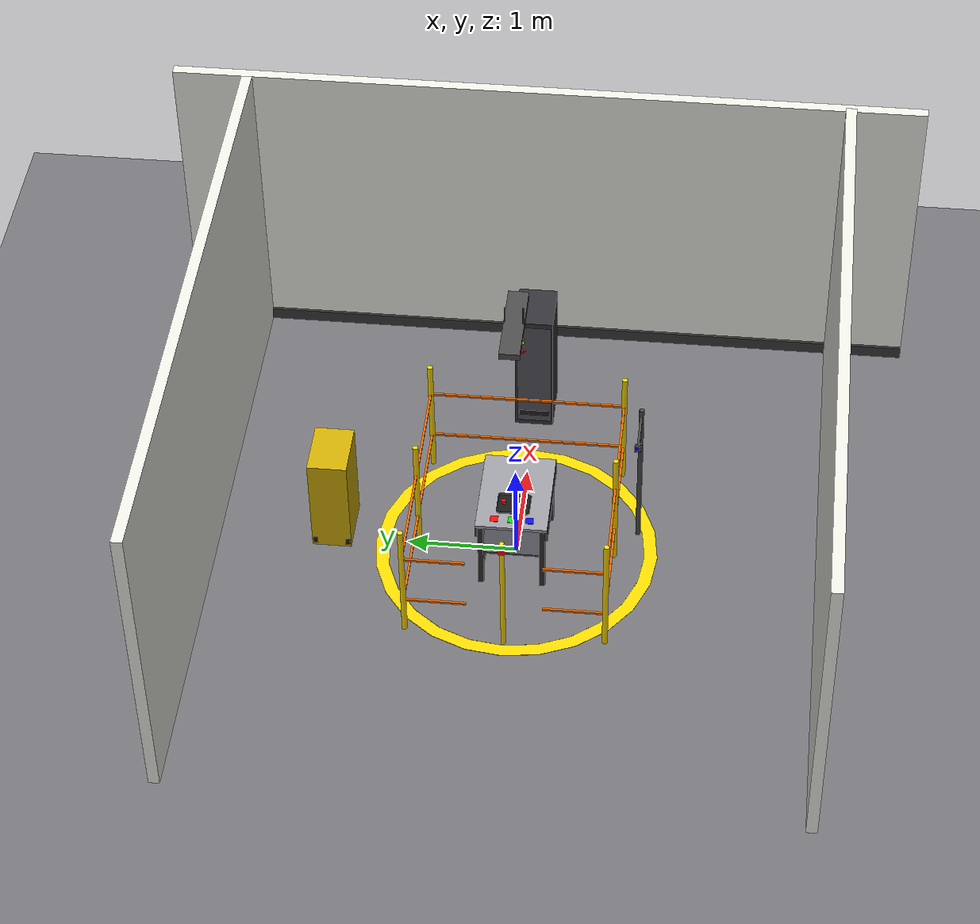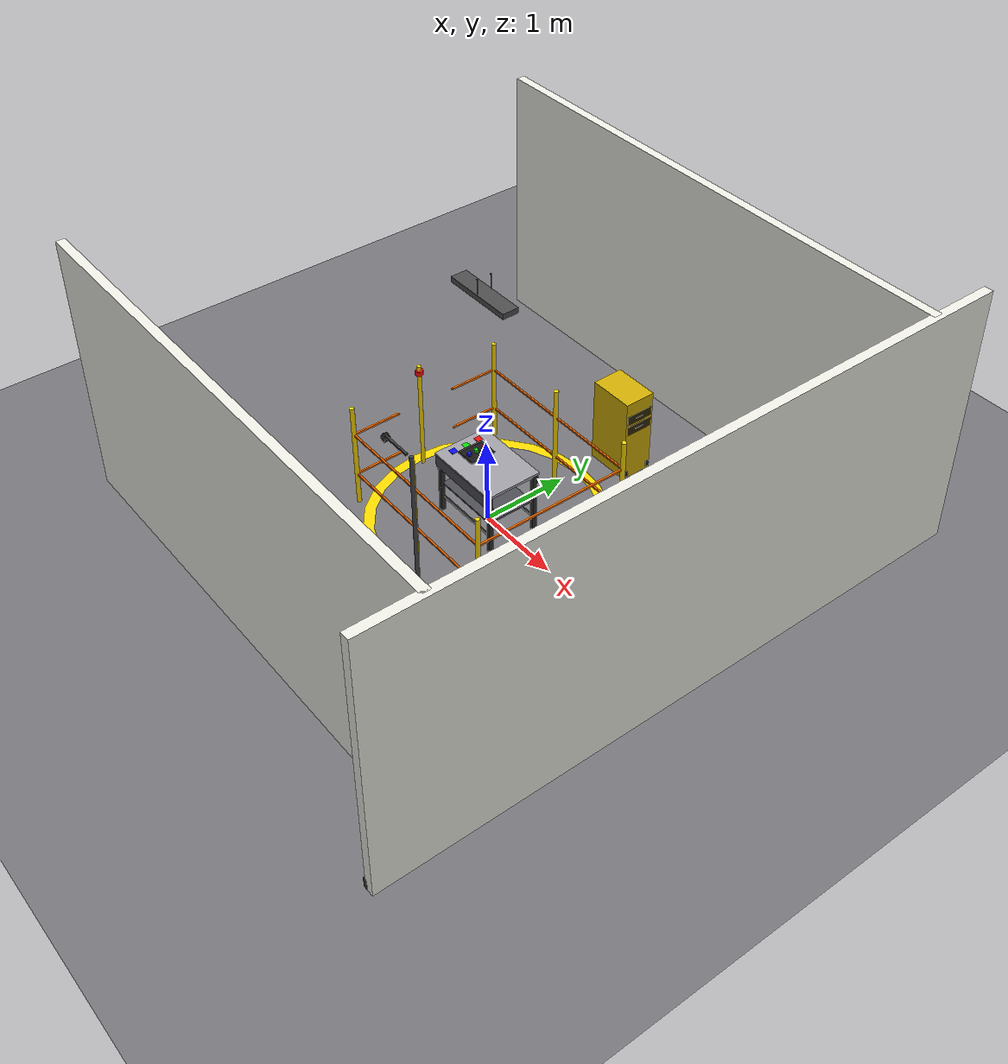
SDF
<?xml version="1.0"?>
<sdf version="1.8">
  <world name="falcon_arm_world">

    <physics name="1ms" type="ignored">
      <max_step_size>0.001</max_step_size>
      <real_time_factor>1.0</real_time_factor>
    </physics>

    <plugin filename="gz-sim-physics-system"         name="gz::sim::systems::Physics"/>
    <plugin filename="gz-sim-user-commands-system"   name="gz::sim::systems::UserCommands"/>
    <plugin filename="gz-sim-scene-broadcaster-system" name="gz::sim::systems::SceneBroadcaster"/>

    <light name="sun" type="directional">
      <cast_shadows>true</cast_shadows>
      <pose>0 0 10 0 0 0</pose>
      <diffuse>0.85 0.85 0.85 1</diffuse>
      <specular>0.30 0.30 0.30 1</specular>
      <direction>-0.4 0.1 -0.9</direction>
      <attenuation><range>1000</range><constant>0.9</constant><linear>0.01</linear><quadratic>0.001</quadratic></attenuation>
    </light>

    <light name="overhead_warm" type="point">
      <pose>-0.2 0 2.4 0 0 0</pose>
      <diffuse>1.0 0.95 0.80 1</diffuse>
      <specular>0.3 0.3 0.3 1</specular>
      <attenuation><range>8</range><constant>0.3</constant><linear>0.06</linear><quadratic>0.01</quadratic></attenuation>
      <cast_shadows>false</cast_shadows>
    </light>

    <light name="side_fill_cool" type="point">
      <pose>1.8 -1.5 2.0 0 0 0</pose>
      <diffuse>0.75 0.85 1.0 1</diffuse>
      <specular>0.1 0.1 0.1 1</specular>
      <attenuation><range>6</range><constant>0.4</constant><linear>0.08</linear><quadratic>0.02</quadratic></attenuation>
      <cast_shadows>false</cast_shadows>
    </light>

    <!-- =====================================================================
         FLOOR  -  dark epoxy concrete
         ===================================================================== -->

    <model name="floor">
      <static>true</static>
      <link name="link">
        <collision name="col">
          <geometry><plane><normal>0 0 1</normal><size>12 12</size></plane></geometry>
        </collision>
        <visual name="vis">
          <geometry><plane><normal>0 0 1</normal><size>12 12</size></plane></geometry>
          <material>
            <ambient>0.38 0.38 0.40 1</ambient>
            <diffuse>0.46 0.46 0.48 1</diffuse>
            <specular>0.20 0.20 0.20 1</specular>
          </material>
        </visual>
      </link>
    </model>

    <!-- Safety zone outer ring (yellow disc) -->
    <model name="safety_ring_outer">
      <static>true</static>
      <pose>0 0 0.002 0 0 0</pose>
      <link name="link">
        <visual name="vis">
          <geometry><cylinder><radius>1.30</radius><length>0.003</length></cylinder></geometry>
          <material>
            <ambient>0.95 0.80 0.00 1</ambient>
            <diffuse>1.00 0.85 0.00 1</diffuse>
            <specular>0.15 0.15 0.05 1</specular>
          </material>
        </visual>
      </link>
    </model>

    <!-- Safety zone inner ring (floor colour, makes ring appear hollow) -->
    <model name="safety_ring_inner">
      <static>true</static>
      <pose>0 0 0.003 0 0 0</pose>
      <link name="link">
        <visual name="vis">
          <geometry><cylinder><radius>1.18</radius><length>0.003</length></cylinder></geometry>
          <material>
            <ambient>0.38 0.38 0.40 1</ambient>
            <diffuse>0.46 0.46 0.48 1</diffuse>
            <specular>0.10 0.10 0.10 1</specular>
          </material>
        </visual>
      </link>
    </model>

    <model name="wall_back">
      <static>true</static>
      <pose>3.0 0 1.5 0 0 0</pose>
      <link name="link">
        <collision name="col"><geometry><box><size>0.10 7 3</size></box></geometry></collision>
        <visual name="vis">
          <geometry><box><size>0.10 7 3</size></box></geometry>
          <material>
            <ambient>0.87 0.87 0.84 1</ambient>
            <diffuse>0.93 0.93 0.90 1</diffuse>
            <specular>0.05 0.05 0.05 1</specular>
          </material>
        </visual>
      </link>
    </model>

    <model name="wall_left">
      <static>true</static>
      <pose>0 2.8 1.5 0 0 0</pose>
      <link name="link">
        <collision name="col"><geometry><box><size>6 0.10 3</size></box></geometry></collision>
        <visual name="vis">
          <geometry><box><size>6 0.10 3</size></box></geometry>
          <material>
            <ambient>0.87 0.87 0.84 1</ambient>
            <diffuse>0.93 0.93 0.90 1</diffuse>
            <specular>0.05 0.05 0.05 1</specular>
          </material>
        </visual>
      </link>
    </model>

    <model name="wall_right">
      <static>true</static>
      <pose>0 -2.8 1.5 0 0 0</pose>
      <link name="link">
        <collision name="col"><geometry><box><size>6 0.10 3</size></box></geometry></collision>
        <visual name="vis">
          <geometry><box><size>6 0.10 3</size></box></geometry>
          <material>
            <ambient>0.87 0.87 0.84 1</ambient>
            <diffuse>0.93 0.93 0.90 1</diffuse>
            <specular>0.05 0.05 0.05 1</specular>
          </material>
        </visual>
      </link>
    </model>

    <!-- Wall baseboard stripe (dark) -->
    <model name="baseboard_back">
      <static>true</static>
      <pose>2.95 0 0.06 0 0 0</pose>
      <link name="link">
        <visual name="vis">
          <geometry><box><size>0.05 7 0.12</size></box></geometry>
          <material>
            <ambient>0.18 0.18 0.18 1</ambient>
            <diffuse>0.22 0.22 0.22 1</diffuse>
            <specular>0.30 0.30 0.30 1</specular>
          </material>
        </visual>
      </link>
    </model>

    <model name="light_fixture_bar">
      <static>true</static>
      <pose>0 0 2.8 0 0 0</pose>
      <link name="link">
        <visual name="vis_housing">
          <geometry><box><size>0.80 0.18 0.06</size></box></geometry>
          <material>
            <ambient>0.25 0.25 0.25 1</ambient>
            <diffuse>0.30 0.30 0.30 1</diffuse>
            <specular>0.50 0.50 0.50 1</specular>
          </material>
        </visual>
        <visual name="vis_panel">
          <pose>0 0 -0.032 0 0 0</pose>
          <geometry><box><size>0.74 0.12 0.005</size></box></geometry>
          <material>
            <ambient>0.98 0.98 0.95 1</ambient>
            <diffuse>1.00 1.00 0.97 1</diffuse>
            <specular>1.00 1.00 1.00 1</specular>
          </material>
        </visual>
      </link>
    </model>

    <!-- Suspension cables -->
    <model name="cable_l">
      <static>true</static>
      <pose>0 0.08 2.9 0 0 0</pose>
      <link name="link">
        <visual name="vis">
          <geometry><cylinder><radius>0.005</radius><length>0.20</length></cylinder></geometry>
          <material><ambient>0.2 0.2 0.2 1</ambient><diffuse>0.25 0.25 0.25 1</diffuse><specular>0.5 0.5 0.5 1</specular></material>
        </visual>
      </link>
    </model>
    <model name="cable_r">
      <static>true</static>
      <pose>0 -0.08 2.9 0 0 0</pose>
      <link name="link">
        <visual name="vis">
          <geometry><cylinder><radius>0.005</radius><length>0.20</length></cylinder></geometry>
          <material><ambient>0.2 0.2 0.2 1</ambient><diffuse>0.25 0.25 0.25 1</diffuse><specular>0.5 0.5 0.5 1</specular></material>
        </visual>
      </link>
    </model>

    <model name="workbench">
      <static>true</static>
      <pose>0 0 0 0 0 0</pose>

      <link name="table_top">
        <pose>0 0 0.740 0 0 0</pose>
        <collision name="col">
          <geometry><box><size>0.90 0.65 0.030</size></box></geometry>
          <surface><friction><ode><mu>0.9</mu><mu2>0.9</mu2></ode></friction></surface>
        </collision>
        <visual name="vis">
          <geometry><box><size>0.90 0.65 0.030</size></box></geometry>
          <material>
            <ambient>0.52 0.52 0.55 1</ambient>
            <diffuse>0.62 0.62 0.65 1</diffuse>
            <specular>0.70 0.70 0.70 1</specular>
          </material>
        </visual>
      </link>

      <!-- Front apron -->
      <link name="apron_front">
        <pose>0 -0.315 0.670 0 0 0</pose>
        <visual name="vis">
          <geometry><box><size>0.86 0.025 0.14</size></box></geometry>
          <material>
            <ambient>0.25 0.25 0.28 1</ambient>
            <diffuse>0.30 0.30 0.33 1</diffuse>
            <specular>0.55 0.55 0.55 1</specular>
          </material>
        </visual>
      </link>

      <!-- Back apron -->
      <link name="apron_back">
        <pose>0 0.315 0.670 0 0 0</pose>
        <visual name="vis">
          <geometry><box><size>0.86 0.025 0.14</size></box></geometry>
          <material>
            <ambient>0.25 0.25 0.28 1</ambient>
            <diffuse>0.30 0.30 0.33 1</diffuse>
            <specular>0.55 0.55 0.55 1</specular>
          </material>
        </visual>
      </link>

      <!-- 4 legs (charcoal) -->
      <link name="leg_fl">
        <pose>0.41 -0.28 0.3625 0 0 0</pose>
        <collision name="col"><geometry><box><size>0.05 0.05 0.725</size></box></geometry></collision>
        <visual name="vis">
          <geometry><box><size>0.05 0.05 0.725</size></box></geometry>
          <material><ambient>0.14 0.14 0.14 1</ambient><diffuse>0.18 0.18 0.18 1</diffuse><specular>0.50 0.50 0.50 1</specular></material>
        </visual>
      </link>
      <link name="leg_fr">
        <pose>0.41 0.28 0.3625 0 0 0</pose>
        <collision name="col"><geometry><box><size>0.05 0.05 0.725</size></box></geometry></collision>
        <visual name="vis">
          <geometry><box><size>0.05 0.05 0.725</size></box></geometry>
          <material><ambient>0.14 0.14 0.14 1</ambient><diffuse>0.18 0.18 0.18 1</diffuse><specular>0.50 0.50 0.50 1</specular></material>
        </visual>
      </link>
      <link name="leg_bl">
        <pose>-0.41 -0.28 0.3625 0 0 0</pose>
        <collision name="col"><geometry><box><size>0.05 0.05 0.725</size></box></geometry></collision>
        <visual name="vis">
          <geometry><box><size>0.05 0.05 0.725</size></box></geometry>
          <material><ambient>0.14 0.14 0.14 1</ambient><diffuse>0.18 0.18 0.18 1</diffuse><specular>0.50 0.50 0.50 1</specular></material>
        </visual>
      </link>
      <link name="leg_br">
        <pose>-0.41 0.28 0.3625 0 0 0</pose>
        <collision name="col"><geometry><box><size>0.05 0.05 0.725</size></box></geometry></collision>
        <visual name="vis">
          <geometry><box><size>0.05 0.05 0.725</size></box></geometry>
          <material><ambient>0.14 0.14 0.14 1</ambient><diffuse>0.18 0.18 0.18 1</diffuse><specular>0.50 0.50 0.50 1</specular></material>
        </visual>
      </link>

      <!-- Under-shelf -->
      <link name="shelf">
        <pose>0 0 0.36 0 0 0</pose>
        <visual name="vis">
          <geometry><box><size>0.80 0.55 0.018</size></box></geometry>
          <material><ambient>0.25 0.25 0.28 1</ambient><diffuse>0.30 0.30 0.33 1</diffuse><specular>0.40 0.40 0.40 1</specular></material>
        </visual>
      </link>

      <!-- Cross brace front-back -->
      <link name="brace_l">
        <pose>0 -0.265 0.18 0 0 0</pose>
        <visual name="vis">
          <geometry><box><size>0.82 0.02 0.02</size></box></geometry>
          <material><ambient>0.14 0.14 0.14 1</ambient><diffuse>0.18 0.18 0.18 1</diffuse><specular>0.50 0.50 0.50 1</specular></material>
        </visual>
      </link>
      <link name="brace_r">
        <pose>0 0.265 0.18 0 0 0</pose>
        <visual name="vis">
          <geometry><box><size>0.82 0.02 0.02</size></box></geometry>
          <material><ambient>0.14 0.14 0.14 1</ambient><diffuse>0.18 0.18 0.18 1</diffuse><specular>0.50 0.50 0.50 1</specular></material>
        </visual>
      </link>

      <joint name="j_fl"  type="fixed"><parent>table_top</parent><child>leg_fl</child></joint>
      <joint name="j_fr"  type="fixed"><parent>table_top</parent><child>leg_fr</child></joint>
      <joint name="j_bl"  type="fixed"><parent>table_top</parent><child>leg_bl</child></joint>
      <joint name="j_br"  type="fixed"><parent>table_top</parent><child>leg_br</child></joint>
      <joint name="j_af"  type="fixed"><parent>table_top</parent><child>apron_front</child></joint>
      <joint name="j_ab"  type="fixed"><parent>table_top</parent><child>apron_back</child></joint>
      <joint name="j_sh"  type="fixed"><parent>table_top</parent><child>shelf</child></joint>
      <joint name="j_bl2" type="fixed"><parent>table_top</parent><child>brace_l</child></joint>
      <joint name="j_br2" type="fixed"><parent>table_top</parent><child>brace_r</child></joint>
    </model>

    <model name="source_tray">
      <static>true</static>
      <pose>-0.17 0 0.769 0 0 0</pose>
      <link name="base">
        <collision name="col"><geometry><box><size>0.22 0.28 0.008</size></box></geometry></collision>
        <visual name="vis">
          <geometry><box><size>0.22 0.28 0.008</size></box></geometry>
          <material><ambient>0.08 0.08 0.08 1</ambient><diffuse>0.10 0.10 0.10 1</diffuse><specular>0.40 0.40 0.40 1</specular></material>
        </visual>
      </link>
      <!-- Tray rim - front -->
      <link name="rim_f">
        <pose>0 -0.145 0.010 0 0 0</pose>
        <visual name="vis"><geometry><box><size>0.22 0.010 0.012</size></box></geometry>
          <material><ambient>0.08 0.08 0.08 1</ambient><diffuse>0.10 0.10 0.10 1</diffuse><specular>0.40 0.40 0.40 1</specular></material>
        </visual>
      </link>
      <link name="rim_b">
        <pose>0 0.145 0.010 0 0 0</pose>
        <visual name="vis"><geometry><box><size>0.22 0.010 0.012</size></box></geometry>
          <material><ambient>0.08 0.08 0.08 1</ambient><diffuse>0.10 0.10 0.10 1</diffuse><specular>0.40 0.40 0.40 1</specular></material>
        </visual>
      </link>
      <link name="rim_l">
        <pose>-0.115 0 0.010 0 0 0</pose>
        <visual name="vis"><geometry><box><size>0.010 0.28 0.012</size></box></geometry>
          <material><ambient>0.08 0.08 0.08 1</ambient><diffuse>0.10 0.10 0.10 1</diffuse><specular>0.40 0.40 0.40 1</specular></material>
        </visual>
      </link>
      <link name="rim_r">
        <pose>0.115 0 0.010 0 0 0</pose>
        <visual name="vis"><geometry><box><size>0.010 0.28 0.012</size></box></geometry>
          <material><ambient>0.08 0.08 0.08 1</ambient><diffuse>0.10 0.10 0.10 1</diffuse><specular>0.40 0.40 0.40 1</specular></material>
        </visual>
      </link>
      <joint name="j_rf" type="fixed"><parent>base</parent><child>rim_f</child></joint>
      <joint name="j_rb" type="fixed"><parent>base</parent><child>rim_b</child></joint>
      <joint name="j_rl" type="fixed"><parent>base</parent><child>rim_l</child></joint>
      <joint name="j_rr" type="fixed"><parent>base</parent><child>rim_r</child></joint>
    </model>

    <model name="pad_red">
      <static>true</static>
      <pose>-0.35 0.16 0.758 0 0 0</pose>
      <link name="link">
        <collision name="col"><geometry><box><size>0.07 0.07 0.004</size></box></geometry></collision>
        <visual name="vis">
          <geometry><box><size>0.07 0.07 0.004</size></box></geometry>
          <material><ambient>0.80 0.04 0.04 1</ambient><diffuse>0.95 0.05 0.05 1</diffuse><specular>0.40 0.40 0.40 1</specular></material>
        </visual>
      </link>
    </model>

    <model name="pad_green">
      <static>true</static>
      <pose>-0.35 0.00 0.758 0 0 0</pose>
      <link name="link">
        <collision name="col"><geometry><box><size>0.07 0.07 0.004</size></box></geometry></collision>
        <visual name="vis">
          <geometry><box><size>0.07 0.07 0.004</size></box></geometry>
          <material><ambient>0.04 0.70 0.04 1</ambient><diffuse>0.05 0.85 0.05 1</diffuse><specular>0.40 0.40 0.40 1</specular></material>
        </visual>
      </link>
    </model>

    <model name="pad_blue">
      <static>true</static>
      <pose>-0.35 -0.16 0.758 0 0 0</pose>
      <link name="link">
        <collision name="col"><geometry><box><size>0.07 0.07 0.004</size></box></geometry></collision>
        <visual name="vis">
          <geometry><box><size>0.07 0.07 0.004</size></box></geometry>
          <material><ambient>0.04 0.04 0.80 1</ambient><diffuse>0.05 0.05 0.95 1</diffuse><specular>0.40 0.40 0.40 1</specular></material>
        </visual>
      </link>
    </model>

    <model name="block_red">
      <static>false</static>
      <pose>-0.17 0.09 0.800 0 0 0</pose>
      <link name="link">
        <inertial><mass>0.05</mass><inertia><ixx>1.04e-5</ixx><iyy>1.04e-5</iyy><izz>1.04e-5</izz></inertia></inertial>
        <collision name="col">
          <geometry><box><size>0.035 0.035 0.035</size></box></geometry>
          <surface><friction><ode><mu>0.7</mu><mu2>0.7</mu2></ode></friction></surface>
        </collision>
        <visual name="vis">
          <geometry><box><size>0.035 0.035 0.035</size></box></geometry>
          <material><ambient>0.85 0.06 0.06 1</ambient><diffuse>1.00 0.08 0.08 1</diffuse><specular>0.70 0.70 0.70 1</specular></material>
        </visual>
      </link>
    </model>

    <model name="block_green">
      <static>false</static>
      <pose>-0.17 0.00 0.800 0 0 0</pose>
      <link name="link">
        <inertial><mass>0.05</mass><inertia><ixx>1.04e-5</ixx><iyy>1.04e-5</iyy><izz>1.04e-5</izz></inertia></inertial>
        <collision name="col">
          <geometry><box><size>0.035 0.035 0.035</size></box></geometry>
          <surface><friction><ode><mu>0.7</mu><mu2>0.7</mu2></ode></friction></surface>
        </collision>
        <visual name="vis">
          <geometry><box><size>0.035 0.035 0.035</size></box></geometry>
          <material><ambient>0.06 0.75 0.06 1</ambient><diffuse>0.08 0.90 0.08 1</diffuse><specular>0.70 0.70 0.70 1</specular></material>
        </visual>
      </link>
    </model>

    <model name="block_blue">
      <static>false</static>
      <pose>-0.17 -0.09 0.800 0 0 0</pose>
      <link name="link">
        <inertial><mass>0.05</mass><inertia><ixx>1.04e-5</ixx><iyy>1.04e-5</iyy><izz>1.04e-5</izz></inertia></inertial>
        <collision name="col">
          <geometry><box><size>0.035 0.035 0.035</size></box></geometry>
          <surface><friction><ode><mu>0.7</mu><mu2>0.7</mu2></ode></friction></surface>
        </collision>
        <visual name="vis">
          <geometry><box><size>0.035 0.035 0.035</size></box></geometry>
          <material><ambient>0.06 0.06 0.85 1</ambient><diffuse>0.08 0.08 1.00 1</diffuse><specular>0.70 0.70 0.70 1</specular></material>
        </visual>
      </link>
    </model>

    <model name="post_fl"><static>true</static><pose>1.05 -0.90 0.62 0 0 0</pose>
      <link name="link"><collision name="col"><geometry><cylinder><radius>0.025</radius><length>1.24</length></cylinder></geometry></collision>
        <visual name="vis"><geometry><cylinder><radius>0.025</radius><length>1.24</length></cylinder></geometry>
          <material><ambient>0.90 0.75 0.00 1</ambient><diffuse>1.00 0.85 0.00 1</diffuse><specular>0.45 0.40 0.10 1</specular></material>
        </visual>
      </link>
    </model>
    <model name="post_fr"><static>true</static><pose>1.05 0.90 0.62 0 0 0</pose>
      <link name="link"><collision name="col"><geometry><cylinder><radius>0.025</radius><length>1.24</length></cylinder></geometry></collision>
        <visual name="vis"><geometry><cylinder><radius>0.025</radius><length>1.24</length></cylinder></geometry>
          <material><ambient>0.90 0.75 0.00 1</ambient><diffuse>1.00 0.85 0.00 1</diffuse><specular>0.45 0.40 0.10 1</specular></material>
        </visual>
      </link>
    </model>
    <model name="post_ml"><static>true</static><pose>0 -0.90 0.62 0 0 0</pose>
      <link name="link">
        <visual name="vis"><geometry><cylinder><radius>0.025</radius><length>1.24</length></cylinder></geometry>
          <material><ambient>0.90 0.75 0.00 1</ambient><diffuse>1.00 0.85 0.00 1</diffuse><specular>0.45 0.40 0.10 1</specular></material>
        </visual>
      </link>
    </model>
    <model name="post_mr"><static>true</static><pose>0 0.90 0.62 0 0 0</pose>
      <link name="link">
        <visual name="vis"><geometry><cylinder><radius>0.025</radius><length>1.24</length></cylinder></geometry>
          <material><ambient>0.90 0.75 0.00 1</ambient><diffuse>1.00 0.85 0.00 1</diffuse><specular>0.45 0.40 0.10 1</specular></material>
        </visual>
      </link>
    </model>
    <model name="post_bl"><static>true</static><pose>-1.05 -0.90 0.62 0 0 0</pose>
      <link name="link"><collision name="col"><geometry><cylinder><radius>0.025</radius><length>1.24</length></cylinder></geometry></collision>
        <visual name="vis"><geometry><cylinder><radius>0.025</radius><length>1.24</length></cylinder></geometry>
          <material><ambient>0.90 0.75 0.00 1</ambient><diffuse>1.00 0.85 0.00 1</diffuse><specular>0.45 0.40 0.10 1</specular></material>
        </visual>
      </link>
    </model>
    <model name="post_br"><static>true</static><pose>-1.05 0.90 0.62 0 0 0</pose>
      <link name="link"><collision name="col"><geometry><cylinder><radius>0.025</radius><length>1.24</length></cylinder></geometry></collision>
        <visual name="vis"><geometry><cylinder><radius>0.025</radius><length>1.24</length></cylinder></geometry>
          <material><ambient>0.90 0.75 0.00 1</ambient><diffuse>1.00 0.85 0.00 1</diffuse><specular>0.45 0.40 0.10 1</specular></material>
        </visual>
      </link>
    </model>

    <!-- Side rails (left y=-0.90, right y=+0.90) -->
    <model name="rail_side_l_lo"><static>true</static><pose>0 -0.90 0.38 0 0 0</pose>
      <link name="link"><visual name="vis"><geometry><box><size>2.10 0.020 0.020</size></box></geometry>
          <material><ambient>0.85 0.35 0.00 1</ambient><diffuse>1.00 0.42 0.00 1</diffuse><specular>0.35 0.20 0.05 1</specular></material>
        </visual></link>
    </model>
    <model name="rail_side_l_hi"><static>true</static><pose>0 -0.90 0.90 0 0 0</pose>
      <link name="link"><visual name="vis"><geometry><box><size>2.10 0.020 0.020</size></box></geometry>
          <material><ambient>0.85 0.35 0.00 1</ambient><diffuse>1.00 0.42 0.00 1</diffuse><specular>0.35 0.20 0.05 1</specular></material>
        </visual></link>
    </model>
    <model name="rail_side_r_lo"><static>true</static><pose>0 0.90 0.38 0 0 0</pose>
      <link name="link"><visual name="vis"><geometry><box><size>2.10 0.020 0.020</size></box></geometry>
          <material><ambient>0.85 0.35 0.00 1</ambient><diffuse>1.00 0.42 0.00 1</diffuse><specular>0.35 0.20 0.05 1</specular></material>
        </visual></link>
    </model>
    <model name="rail_side_r_hi"><static>true</static><pose>0 0.90 0.90 0 0 0</pose>
      <link name="link"><visual name="vis"><geometry><box><size>2.10 0.020 0.020</size></box></geometry>
          <material><ambient>0.85 0.35 0.00 1</ambient><diffuse>1.00 0.42 0.00 1</diffuse><specular>0.35 0.20 0.05 1</specular></material>
        </visual></link>
    </model>

    <!-- Back rail (x=+1.05) -->
    <model name="rail_back_lo"><static>true</static><pose>1.05 0 0.38 0 0 0</pose>
      <link name="link"><visual name="vis"><geometry><box><size>0.020 1.80 0.020</size></box></geometry>
          <material><ambient>0.85 0.35 0.00 1</ambient><diffuse>1.00 0.42 0.00 1</diffuse><specular>0.35 0.20 0.05 1</specular></material>
        </visual></link>
    </model>
    <model name="rail_back_hi"><static>true</static><pose>1.05 0 0.90 0 0 0</pose>
      <link name="link"><visual name="vis"><geometry><box><size>0.020 1.80 0.020</size></box></geometry>
          <material><ambient>0.85 0.35 0.00 1</ambient><diffuse>1.00 0.42 0.00 1</diffuse><specular>0.35 0.20 0.05 1</specular></material>
        </visual></link>
    </model>

    <!-- Front rails (x=-1.05) - two segments with access gap at centre -->
    <model name="rail_front_lo_l"><static>true</static><pose>-1.05 -0.62 0.38 0 0 0</pose>
      <link name="link"><visual name="vis"><geometry><box><size>0.020 0.56 0.020</size></box></geometry>
          <material><ambient>0.85 0.35 0.00 1</ambient><diffuse>1.00 0.42 0.00 1</diffuse><specular>0.35 0.20 0.05 1</specular></material>
        </visual></link>
    </model>
    <model name="rail_front_lo_r"><static>true</static><pose>-1.05 0.62 0.38 0 0 0</pose>
      <link name="link"><visual name="vis"><geometry><box><size>0.020 0.56 0.020</size></box></geometry>
          <material><ambient>0.85 0.35 0.00 1</ambient><diffuse>1.00 0.42 0.00 1</diffuse><specular>0.35 0.20 0.05 1</specular></material>
        </visual></link>
    </model>
    <model name="rail_front_hi_l"><static>true</static><pose>-1.05 -0.62 0.90 0 0 0</pose>
      <link name="link"><visual name="vis"><geometry><box><size>0.020 0.56 0.020</size></box></geometry>
          <material><ambient>0.85 0.35 0.00 1</ambient><diffuse>1.00 0.42 0.00 1</diffuse><specular>0.35 0.20 0.05 1</specular></material>
        </visual></link>
    </model>
    <model name="rail_front_hi_r"><static>true</static><pose>-1.05 0.62 0.90 0 0 0</pose>
      <link name="link"><visual name="vis"><geometry><box><size>0.020 0.56 0.020</size></box></geometry>
          <material><ambient>0.85 0.35 0.00 1</ambient><diffuse>1.00 0.42 0.00 1</diffuse><specular>0.35 0.20 0.05 1</specular></material>
        </visual></link>
    </model>

    <model name="controller_cabinet">
      <static>true</static>
      <pose>1.90 0 0 0 0 0</pose>
      <link name="body">
        <pose>0 0 0.65 0 0 0</pose>
        <collision name="col"><geometry><box><size>0.48 0.36 1.30</size></box></geometry></collision>
        <visual name="vis_body">
          <geometry><box><size>0.48 0.36 1.30</size></box></geometry>
          <material><ambient>0.16 0.16 0.18 1</ambient><diffuse>0.20 0.20 0.22 1</diffuse><specular>0.40 0.40 0.40 1</specular></material>
        </visual>
        <!-- Front door panel -->
        <visual name="vis_door">
          <pose>-0.242 0 0 0 0 0</pose>
          <geometry><box><size>0.002 0.32 1.20</size></box></geometry>
          <material><ambient>0.26 0.26 0.30 1</ambient><diffuse>0.32 0.32 0.36 1</diffuse><specular>0.55 0.55 0.55 1</specular></material>
        </visual>
        <!-- Green power LED -->
        <visual name="vis_led_pwr">
          <pose>-0.243 0.10 0.45 0 0 0</pose>
          <geometry><sphere><radius>0.013</radius></sphere></geometry>
          <material><ambient>0.00 0.90 0.00 1</ambient><diffuse>0.00 1.00 0.00 1</diffuse><specular>1.00 1.00 1.00 1</specular></material>
        </visual>
        <!-- Yellow status LED -->
        <visual name="vis_led_stat">
          <pose>-0.243 0.10 0.40 0 0 0</pose>
          <geometry><sphere><radius>0.013</radius></sphere></geometry>
          <material><ambient>0.90 0.85 0.00 1</ambient><diffuse>1.00 0.90 0.00 1</diffuse><specular>1.00 1.00 1.00 1</specular></material>
        </visual>
        <!-- Red E-stop mushroom button -->
        <visual name="vis_estop">
          <pose>-0.243 0.10 0.30 0 0 0</pose>
          <geometry><cylinder><radius>0.020</radius><length>0.018</length></cylinder></geometry>
          <material><ambient>0.90 0.04 0.04 1</ambient><diffuse>1.00 0.05 0.05 1</diffuse><specular>0.80 0.50 0.50 1</specular></material>
        </visual>
        <!-- Ventilation grille (thin dark strip) -->
        <visual name="vis_vent">
          <pose>-0.243 0 -0.50 0 0 0</pose>
          <geometry><box><size>0.002 0.28 0.06</size></box></geometry>
          <material><ambient>0.10 0.10 0.10 1</ambient><diffuse>0.12 0.12 0.12 1</diffuse><specular>0.20 0.20 0.20 1</specular></material>
        </visual>
      </link>
    </model>

    <model name="cam_pole">
      <static>true</static>
      <pose>0.30 -1.10 0.80 0 0 0</pose>
      <link name="link">
        <collision name="col"><geometry><cylinder><radius>0.022</radius><length>1.60</length></cylinder></geometry></collision>
        <visual name="vis">
          <geometry><cylinder><radius>0.022</radius><length>1.60</length></cylinder></geometry>
          <material><ambient>0.22 0.22 0.22 1</ambient><diffuse>0.28 0.28 0.28 1</diffuse><specular>0.55 0.55 0.55 1</specular></material>
        </visual>
      </link>
    </model>

    <model name="cam_arm">
      <static>true</static>
      <pose>0.05 -1.10 1.575 0 0 0</pose>
      <link name="link">
        <visual name="vis">
          <geometry><box><size>0.35 0.022 0.022</size></box></geometry>
          <material><ambient>0.22 0.22 0.22 1</ambient><diffuse>0.28 0.28 0.28 1</diffuse><specular>0.55 0.55 0.55 1</specular></material>
        </visual>
      </link>
    </model>

    <model name="cam_body">
      <static>true</static>
      <pose>-0.13 -1.10 1.555 0 0.4 0</pose>
      <link name="link">
        <visual name="vis_box">
          <geometry><box><size>0.07 0.065 0.055</size></box></geometry>
          <material><ambient>0.05 0.05 0.05 1</ambient><diffuse>0.08 0.08 0.08 1</diffuse><specular>0.65 0.65 0.65 1</specular></material>
        </visual>
        <!-- Lens (blue-tinted circle) -->
        <visual name="vis_lens">
          <pose>-0.036 0 0 0 1.5708 0</pose>
          <geometry><cylinder><radius>0.018</radius><length>0.012</length></cylinder></geometry>
          <material><ambient>0.04 0.04 0.55 1</ambient><diffuse>0.05 0.05 0.75 1</diffuse><specular>0.90 0.90 1.00 1</specular></material>
        </visual>
      </link>
    </model>

    <model name="tool_cart">
      <static>true</static>
      <pose>0.15 1.70 0 0 0 0</pose>

      <link name="body">
        <pose>0 0 0.50 0 0 0</pose>
        <collision name="col"><geometry><box><size>0.52 0.36 1.00</size></box></geometry></collision>
        <visual name="vis">
          <geometry><box><size>0.52 0.36 1.00</size></box></geometry>
          <material><ambient>0.70 0.58 0.02 1</ambient><diffuse>0.82 0.68 0.02 1</diffuse><specular>0.45 0.38 0.08 1</specular></material>
        </visual>
        <!-- Drawer 1 face -->
        <visual name="drw1">
          <pose>0.262 0 0.28 0 0 0</pose>
          <geometry><box><size>0.003 0.32 0.11</size></box></geometry>
          <material><ambient>0.14 0.12 0.02 1</ambient><diffuse>0.18 0.14 0.02 1</diffuse><specular>0.35 0.30 0.10 1</specular></material>
        </visual>
        <!-- Drawer 2 face -->
        <visual name="drw2">
          <pose>0.262 0 0.14 0 0 0</pose>
          <geometry><box><size>0.003 0.32 0.11</size></box></geometry>
          <material><ambient>0.14 0.12 0.02 1</ambient><diffuse>0.18 0.14 0.02 1</diffuse><specular>0.35 0.30 0.10 1</specular></material>
        </visual>
        <!-- Drawer handles (small silver bars) -->
        <visual name="hdl1">
          <pose>0.264 0 0.28 0 0 0</pose>
          <geometry><box><size>0.003 0.10 0.010</size></box></geometry>
          <material><ambient>0.70 0.70 0.70 1</ambient><diffuse>0.85 0.85 0.85 1</diffuse><specular>0.90 0.90 0.90 1</specular></material>
        </visual>
        <visual name="hdl2">
          <pose>0.264 0 0.14 0 0 0</pose>
          <geometry><box><size>0.003 0.10 0.010</size></box></geometry>
          <material><ambient>0.70 0.70 0.70 1</ambient><diffuse>0.85 0.85 0.85 1</diffuse><specular>0.90 0.90 0.90 1</specular></material>
        </visual>
      </link>

      <!-- 4 wheels -->
      <link name="whl_fl"><pose>0.22 -0.15 0.06 1.5708 0 0</pose>
        <visual name="vis"><geometry><cylinder><radius>0.055</radius><length>0.04</length></cylinder></geometry>
          <material><ambient>0.06 0.06 0.06 1</ambient><diffuse>0.08 0.08 0.08 1</diffuse><specular>0.30 0.30 0.30 1</specular></material>
        </visual>
      </link>
      <link name="whl_fr"><pose>0.22 0.15 0.06 1.5708 0 0</pose>
        <visual name="vis"><geometry><cylinder><radius>0.055</radius><length>0.04</length></cylinder></geometry>
          <material><ambient>0.06 0.06 0.06 1</ambient><diffuse>0.08 0.08 0.08 1</diffuse><specular>0.30 0.30 0.30 1</specular></material>
        </visual>
      </link>
      <link name="whl_bl"><pose>-0.22 -0.15 0.06 1.5708 0 0</pose>
        <visual name="vis"><geometry><cylinder><radius>0.055</radius><length>0.04</length></cylinder></geometry>
          <material><ambient>0.06 0.06 0.06 1</ambient><diffuse>0.08 0.08 0.08 1</diffuse><specular>0.30 0.30 0.30 1</specular></material>
        </visual>
      </link>
      <link name="whl_br"><pose>-0.22 0.15 0.06 1.5708 0 0</pose>
        <visual name="vis"><geometry><cylinder><radius>0.055</radius><length>0.04</length></cylinder></geometry>
          <material><ambient>0.06 0.06 0.06 1</ambient><diffuse>0.08 0.08 0.08 1</diffuse><specular>0.30 0.30 0.30 1</specular></material>
        </visual>
      </link>

      <joint name="j_b"   type="fixed"><parent>body</parent><child>whl_fl</child></joint>
      <joint name="j_wfr" type="fixed"><parent>body</parent><child>whl_fr</child></joint>
      <joint name="j_wbl" type="fixed"><parent>body</parent><child>whl_bl</child></joint>
      <joint name="j_wbr" type="fixed"><parent>body</parent><child>whl_br</child></joint>
    </model>

    <model name="estop_station">
      <static>true</static>
      <pose>-1.15 0 0 0 0 0</pose>
      <link name="pole">
        <pose>0 0 0.65 0 0 0</pose>
        <collision name="col"><geometry><cylinder><radius>0.022</radius><length>1.30</length></cylinder></geometry></collision>
        <visual name="vis">
          <geometry><cylinder><radius>0.022</radius><length>1.30</length></cylinder></geometry>
          <material><ambient>0.90 0.75 0.00 1</ambient><diffuse>1.00 0.85 0.00 1</diffuse><specular>0.45 0.40 0.10 1</specular></material>
        </visual>
      </link>
      <link name="button">
        <pose>0 0 1.22 0 0 0</pose>
        <visual name="vis">
          <geometry><cylinder><radius>0.042</radius><length>0.055</length></cylinder></geometry>
          <material><ambient>0.90 0.04 0.04 1</ambient><diffuse>1.00 0.05 0.05 1</diffuse><specular>0.85 0.50 0.50 1</specular></material>
        </visual>
      </link>
      <joint name="j" type="fixed"><parent>pole</parent><child>button</child></joint>
    </model>

  </world>
</sdf>
